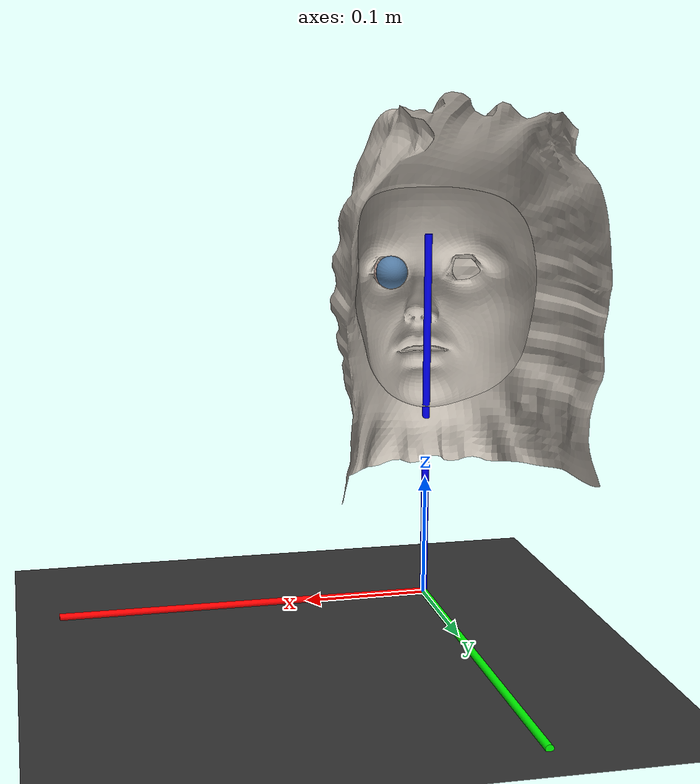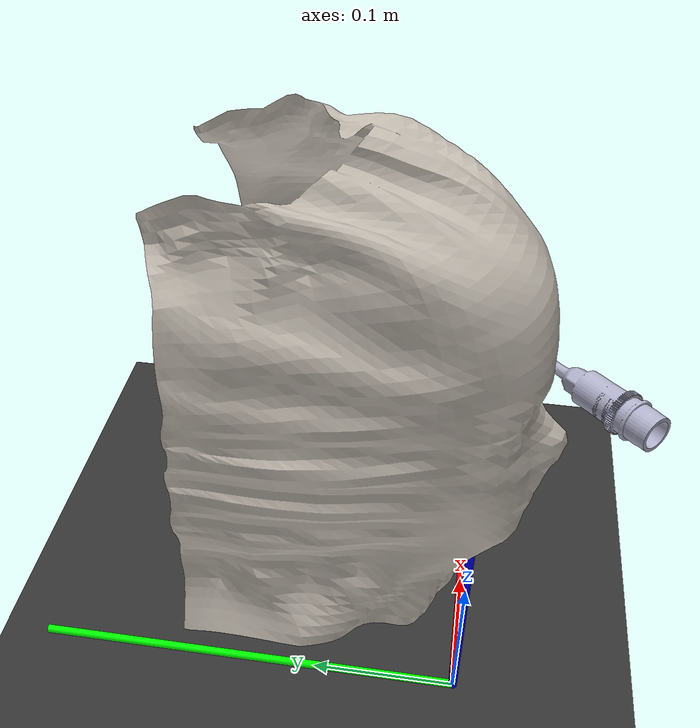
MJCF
<mujoco model="Eye Visualization">
  <compiler angle="degree" meshdir="meshes" texturedir="textures"/>

  <option timestep="0.002" gravity="0 0 -9.81">
    <flag contact="enable"/>
  </option>

  <visual>
    <global offwidth="1920" offheight="1080"/>
    <quality shadowsize="4096"/>
  </visual>

  <asset>
    <!-- Load eye component meshes - strip materials on import -->
    <mesh name="cornea" file="Cornea_L.obj"/>
    <mesh name="eye_interior" file="EyeInterior_L.obj"/>
    <mesh name="eye" file="Eye_L.obj"/>
    <mesh name="eye_wet" file="EyeWet_L.obj"/>
    <mesh name="lens" file="Lens_L_extracted.obj"/>
    <mesh name="inner_eyelid" file="Inner_Eyelid_L.obj"/>
    <mesh name="tear_duct" file="TearDuct_L.obj"/>
    <mesh name="cloth" file="Cloth_L.obj"/>
    <mesh name="face" file="Face_L.obj"/>

    <!-- Load surgical tool -->
    <mesh name="diathermic_tip" file="tools/diathermic_tip.obj" scale="0.001 0.001 0.001"/>

    <!-- Texture for lens (your UV map) -->
    <texture name="lens_texture" type="2d" file="lens_uv_map.png"/>
    <texture name="face_texture" type="2d" file="Eye-Face_Medium02.png"/>
    <texture name="cloth_texture" type="2d" file="Cloth_Color.png"/>

    <!-- Materials -->
    <material name="lens_mat" texture="lens_texture" specular="0.5" shininess="0.8"/>
    <material name="cornea_mat" rgba="0.9 0.95 1.0 0.3" specular="1.0" shininess="1.0"/>
    <material name="eye_mat" rgba="0.1 0.3 0.5 1.0"/>
    <material name="eyelid_mat" rgba="0.95 0.8 0.75 1.0"/>
    <material name="wet_mat" rgba="1.0 1.0 1.0 0.1" specular="1.0" shininess="1.0"/>
    <material name="cloth_mat" texture="cloth_texture" specular="0.3" shininess="0.3"/>
    <material name="face_mat" texture="face_texture" specular="0.3" shininess="0.3"/>
    <material name="tool_mat" rgba="0.7 0.7 0.8 1.0" specular="0.8" shininess="0.9"/>
  </asset>

  <worldbody>
    <!-- Lighting setup -->
    <light name="top_light" pos="0 0 5" dir="0 0 -1" diffuse="1 1 1"/>
    <light name="side_light" pos="1 0 1" dir="-1 0 -0.5" diffuse="0.5 0.5 0.5"/>

    <!-- Ground plane -->
    <geom type="plane" size="1 1 0.1" rgba="0.2 0.2 0.2 1"/>

    <!-- Coordinate axes -->
    <geom name="x_axis" type="cylinder" size="0.003 0.15" pos="0.15 0 0.001"
          euler="0 90 0" rgba="1 0 0 1" contype="0" conaffinity="0"/>
    <geom name="y_axis" type="cylinder" size="0.003 0.15" pos="0 0.15 0.001"
          euler="90 0 0" rgba="0 1 0 1" contype="0" conaffinity="0"/>
    <geom name="z_axis" type="cylinder" size="0.003 0.15" pos="0 0 0.15"
          euler="0 0 0" rgba="0 0 1 1" contype="0" conaffinity="0"/>

    <!-- Eye assembly -->
    <body name="eye_assembly" pos="0 0 0.1">
      <!-- Lens with UV map - RENDER THIS FIRST/SEPARATELY -->
      <geom name="lens_geom" type="mesh" mesh="lens"
            material="lens_mat" contype="0" conaffinity="0" group="0"/>

      <!-- Eye interior (base) -->
      <geom name="eye_interior_geom" type="mesh" mesh="eye_interior"
            material="eye_mat" contype="0" conaffinity="0" group="1"/>

      <!-- Main eye -->
      <geom name="eye_geom" type="mesh" mesh="eye"
            material="eye_mat" contype="0" conaffinity="0" group="1"/>

      <!-- Cornea (transparent) -->
      <geom name="cornea_geom" type="mesh" mesh="cornea"
            material="cornea_mat" contype="0" conaffinity="0" group="1"/>

      <!-- Wet layer (glossy effect) -->
      <geom name="eye_wet_geom" type="mesh" mesh="eye_wet"
            material="wet_mat" contype="0" conaffinity="0" group="1"/>

      <!-- Inner eyelid -->
      <geom name="inner_eyelid_geom" type="mesh" mesh="inner_eyelid"
            material="eyelid_mat" contype="0" conaffinity="0" group="1"/>

      <!-- Tear duct -->
      <geom name="tear_duct_geom" type="mesh" mesh="tear_duct"
            material="eyelid_mat" contype="0" conaffinity="0" group="1"/>

      <!-- Cloth/skin -->
      <geom name="cloth_geom" type="mesh" mesh="cloth"
            material="cloth_mat" contype="0" conaffinity="0" group="1"/>

      <!-- Face -->
      <geom name="face_geom" type="mesh" mesh="face"
            material="face_mat" contype="0" conaffinity="0" group="1"/>

      <!-- Camera positioned above the eye looking down -->
      <camera name="top_view" pos="0.03 -0.1 0.175" euler="90 0 0" fovy="45"/>
      <camera name="angle_view" pos="0.2 0.0 0.2" euler="0 90 90" fovy="45"/>
    </body>

    <body name="diathermic_tip" pos="0.04 -0.015 0.27" euler="0 0 45" mocap="true">

      <!-- Visual geometry -->
      <geom name="tool_geom" type="mesh" mesh="diathermic_tip"
            material="tool_mat" contype="0" conaffinity="0"/>

      <!-- Tool tip marker (red sphere) -->
      <site name="tool_tip" pos="0 0.01 0.0025" size="0.0005" rgba="1 0 0 1"/>
     </body>

      <!-- Include lens visualization elements -->

    <!-- LENS ANALYSIS VISUALIZATION -->
    <!-- Lens geometric center -->
    <body name="lens_center_marker" pos="0.030893 -0.007080 0.270276">
      <geom name="lens_center_sphere" type="sphere" size="0.0002" rgba="0 1 0 0.8" contype="0" conaffinity="0"/>
    </body>

    <!-- Test trajectory points (36 points) -->
    <body name="trajectory_point_0" pos="0.030893 -0.007466 0.273251">
      <geom name="traj_marker_0" type="sphere" size="0.0002" rgba="1 0 1 0.6" contype="0" conaffinity="0"/>
    </body>
    <body name="trajectory_point_1" pos="0.031412 -0.007512 0.273200">
      <geom name="traj_marker_1" type="sphere" size="0.0002" rgba="1 0 1 0.6" contype="0" conaffinity="0"/>
    </body>
    <body name="trajectory_point_2" pos="0.031914 -0.007544 0.273059">
      <geom name="traj_marker_2" type="sphere" size="0.0002" rgba="1 0 1 0.6" contype="0" conaffinity="0"/>
    </body>
    <body name="trajectory_point_3" pos="0.032386 -0.007563 0.272834">
      <geom name="traj_marker_3" type="sphere" size="0.0002" rgba="1 0 1 0.6" contype="0" conaffinity="0"/>
    </body>
    <body name="trajectory_point_4" pos="0.032812 -0.007566 0.272531">
      <geom name="traj_marker_4" type="sphere" size="0.0002" rgba="1 0 1 0.6" contype="0" conaffinity="0"/>
    </body>
    <body name="trajectory_point_5" pos="0.033180 -0.007555 0.272159">
      <geom name="traj_marker_5" type="sphere" size="0.0002" rgba="1 0 1 0.6" contype="0" conaffinity="0"/>
    </body>
    <body name="trajectory_point_6" pos="0.033478 -0.007530 0.271731">
      <geom name="traj_marker_6" type="sphere" size="0.0002" rgba="1 0 1 0.6" contype="0" conaffinity="0"/>
    </body>
    <body name="trajectory_point_7" pos="0.033698 -0.007491 0.271258">
      <geom name="traj_marker_7" type="sphere" size="0.0002" rgba="1 0 1 0.6" contype="0" conaffinity="0"/>
    </body>
    <body name="trajectory_point_8" pos="0.033833 -0.007439 0.270755">
      <geom name="traj_marker_8" type="sphere" size="0.0002" rgba="1 0 1 0.6" contype="0" conaffinity="0"/>
    </body>
    <body name="trajectory_point_9" pos="0.033878 -0.007376 0.270238">
      <geom name="traj_marker_9" type="sphere" size="0.0002" rgba="1 0 1 0.6" contype="0" conaffinity="0"/>
    </body>
    <body name="trajectory_point_10" pos="0.033833 -0.007305 0.269722">
      <geom name="traj_marker_10" type="sphere" size="0.0002" rgba="1 0 1 0.6" contype="0" conaffinity="0"/>
    </body>
    <body name="trajectory_point_11" pos="0.033698 -0.007227 0.269223">
      <geom name="traj_marker_11" type="sphere" size="0.0002" rgba="1 0 1 0.6" contype="0" conaffinity="0"/>
    </body>
    <body name="trajectory_point_12" pos="0.033478 -0.007144 0.268756">
      <geom name="traj_marker_12" type="sphere" size="0.0002" rgba="1 0 1 0.6" contype="0" conaffinity="0"/>
    </body>
    <body name="trajectory_point_13" pos="0.033180 -0.007059 0.268335">
      <geom name="traj_marker_13" type="sphere" size="0.0002" rgba="1 0 1 0.6" contype="0" conaffinity="0"/>
    </body>
    <body name="trajectory_point_14" pos="0.032812 -0.006975 0.267973">
      <geom name="traj_marker_14" type="sphere" size="0.0002" rgba="1 0 1 0.6" contype="0" conaffinity="0"/>
    </body>
    <body name="trajectory_point_15" pos="0.032386 -0.006894 0.267681">
      <geom name="traj_marker_15" type="sphere" size="0.0002" rgba="1 0 1 0.6" contype="0" conaffinity="0"/>
    </body>
    <body name="trajectory_point_16" pos="0.031914 -0.006819 0.267468">
      <geom name="traj_marker_16" type="sphere" size="0.0002" rgba="1 0 1 0.6" contype="0" conaffinity="0"/>
    </body>
    <body name="trajectory_point_17" pos="0.031412 -0.006751 0.267340">
      <geom name="traj_marker_17" type="sphere" size="0.0002" rgba="1 0 1 0.6" contype="0" conaffinity="0"/>
    </body>
    <body name="trajectory_point_18" pos="0.030893 -0.006694 0.267301">
      <geom name="traj_marker_18" type="sphere" size="0.0002" rgba="1 0 1 0.6" contype="0" conaffinity="0"/>
    </body>
    <body name="trajectory_point_19" pos="0.030375 -0.006649 0.267353">
      <geom name="traj_marker_19" type="sphere" size="0.0002" rgba="1 0 1 0.6" contype="0" conaffinity="0"/>
    </body>
    <body name="trajectory_point_20" pos="0.029872 -0.006616 0.267494">
      <geom name="traj_marker_20" type="sphere" size="0.0002" rgba="1 0 1 0.6" contype="0" conaffinity="0"/>
    </body>
    <body name="trajectory_point_21" pos="0.029401 -0.006598 0.267719">
      <geom name="traj_marker_21" type="sphere" size="0.0002" rgba="1 0 1 0.6" contype="0" conaffinity="0"/>
    </body>
    <body name="trajectory_point_22" pos="0.028975 -0.006594 0.268022">
      <geom name="traj_marker_22" type="sphere" size="0.0002" rgba="1 0 1 0.6" contype="0" conaffinity="0"/>
    </body>
    <body name="trajectory_point_23" pos="0.028607 -0.006605 0.268394">
      <geom name="traj_marker_23" type="sphere" size="0.0002" rgba="1 0 1 0.6" contype="0" conaffinity="0"/>
    </body>
    <body name="trajectory_point_24" pos="0.028308 -0.006631 0.268822">
      <geom name="traj_marker_24" type="sphere" size="0.0002" rgba="1 0 1 0.6" contype="0" conaffinity="0"/>
    </body>
    <body name="trajectory_point_25" pos="0.028088 -0.006670 0.269295">
      <geom name="traj_marker_25" type="sphere" size="0.0002" rgba="1 0 1 0.6" contype="0" conaffinity="0"/>
    </body>
    <body name="trajectory_point_26" pos="0.027954 -0.006721 0.269798">
      <geom name="traj_marker_26" type="sphere" size="0.0002" rgba="1 0 1 0.6" contype="0" conaffinity="0"/>
    </body>
    <body name="trajectory_point_27" pos="0.027908 -0.006784 0.270315">
      <geom name="traj_marker_27" type="sphere" size="0.0002" rgba="1 0 1 0.6" contype="0" conaffinity="0"/>
    </body>
    <body name="trajectory_point_28" pos="0.027954 -0.006855 0.270831">
      <geom name="traj_marker_28" type="sphere" size="0.0002" rgba="1 0 1 0.6" contype="0" conaffinity="0"/>
    </body>
    <body name="trajectory_point_29" pos="0.028088 -0.006934 0.271330">
      <geom name="traj_marker_29" type="sphere" size="0.0002" rgba="1 0 1 0.6" contype="0" conaffinity="0"/>
    </body>
    <body name="trajectory_point_30" pos="0.028308 -0.007017 0.271797">
      <geom name="traj_marker_30" type="sphere" size="0.0002" rgba="1 0 1 0.6" contype="0" conaffinity="0"/>
    </body>
    <body name="trajectory_point_31" pos="0.028607 -0.007101 0.272218">
      <geom name="traj_marker_31" type="sphere" size="0.0002" rgba="1 0 1 0.6" contype="0" conaffinity="0"/>
    </body>
    <body name="trajectory_point_32" pos="0.028975 -0.007185 0.272580">
      <geom name="traj_marker_32" type="sphere" size="0.0002" rgba="1 0 1 0.6" contype="0" conaffinity="0"/>
    </body>
    <body name="trajectory_point_33" pos="0.029401 -0.007266 0.272872">
      <geom name="traj_marker_33" type="sphere" size="0.0002" rgba="1 0 1 0.6" contype="0" conaffinity="0"/>
    </body>
    <body name="trajectory_point_34" pos="0.029872 -0.007342 0.273085">
      <geom name="traj_marker_34" type="sphere" size="0.0002" rgba="1 0 1 0.6" contype="0" conaffinity="0"/>
    </body>
    <body name="trajectory_point_35" pos="0.030375 -0.007409 0.273213">
      <geom name="traj_marker_35" type="sphere" size="0.0002" rgba="1 0 1 0.6" contype="0" conaffinity="0"/>
    </body>

  </worldbody>
</mujoco>
